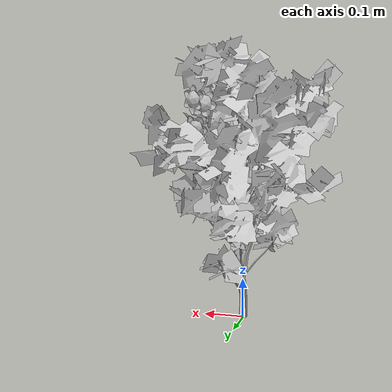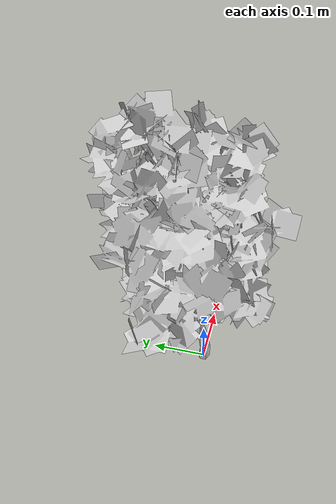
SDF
<?xml version="1.0" ?>
<sdf version="1.6">
  <model name="tree-flowers">
    <!--Skew-Seed:1919820307-->
    <static>true</static>
    <link name="link"/>
    <include>
      <uri>model://tree-mesh</uri>
      <pose>0 0 0 0 0 0</pose>
    </include>
    <joint name="tree_joint" type="fixed">
      <child>tree-mesh::link</child>
      <parent>link</parent>
    </joint>
    <include>
      <name>bramble_0</name>
      <uri>model://bramble</uri>
      <pose> 0.09141163342799694 0.09633158749663887 0.4012208919425634 -0.5691393345106853 1.9225342181580676 0.0</pose>
    </include>
    <joint name="flower_joint_0" type="fixed">
      <child>bramble_0::flower_link</child>
      <parent>link</parent>
    </joint>
    <include>
      <name>bramble_1</name>
      <uri>model://bramble</uri>
      <pose> -0.09704201590292162 0.09363893691673696 0.37490927381271455 -3.052652351292128 0.8508210236286365 0.0</pose>
    </include>
    <joint name="flower_joint_1" type="fixed">
      <child>bramble_1::flower_link</child>
      <parent>link</parent>
    </joint>
    <include>
      <name>bramble_2</name>
      <uri>model://bramble</uri>
      <pose> 0.06508841909901045 0.07868459253553944 0.5128377735165648 -0.4256100876832254 2.0125143327902872 0.0</pose>
    </include>
    <joint name="flower_joint_2" type="fixed">
      <child>bramble_2::flower_link</child>
      <parent>link</parent>
    </joint>
    <include>
      <name>bramble_3</name>
      <uri>model://bramble</uri>
      <pose> 0.10214592072795362 0.05802008697484675 0.5045665272400972 -0.3955162535529281 2.297047099963645 0.0</pose>
    </include>
    <joint name="flower_joint_3" type="fixed">
      <child>bramble_3::flower_link</child>
      <parent>link</parent>
    </joint>
    <include>
      <name>bramble_4</name>
      <uri>model://bramble</uri>
      <pose> 0.08181976897045037 0.127134795257467 0.5631781104094925 -1.0471214156184707 1.4541014988050547 0.0</pose>
    </include>
    <joint name="flower_joint_4" type="fixed">
      <child>bramble_4::flower_link</child>
      <parent>link</parent>
    </joint>
    <include>
      <name>bramble_5</name>
      <uri>model://bramble</uri>
      <pose> 0.07605463344661276 0.12619817467102698 0.49809056200652546 -1.129076965708725 2.0504929128421088 0.0</pose>
    </include>
    <joint name="flower_joint_5" type="fixed">
      <child>bramble_5::flower_link</child>
      <parent>link</parent>
    </joint>
    <include>
      <name>bramble_6</name>
      <uri>model://bramble</uri>
      <pose> 0.06082581944590551 0.1183936683525335 0.5525688325118483 -1.2184092801081008 0.8307684570885713 0.0</pose>
    </include>
    <joint name="flower_joint_6" type="fixed">
      <child>bramble_6::flower_link</child>
      <parent>link</parent>
    </joint>
    <include>
      <name>bramble_7</name>
      <uri>model://bramble</uri>
      <pose> 0.08391144117639651 0.060804736313858444 0.3991896327108064 -0.7997381219607433 1.8653865210781067 0.0</pose>
    </include>
    <joint name="flower_joint_7" type="fixed">
      <child>bramble_7::flower_link</child>
      <parent>link</parent>
    </joint>
  </model>
</sdf>

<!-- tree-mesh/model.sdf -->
<sdf version="1.6">
  <model name="tree-mesh">
    <static>true</static>
    <link name="link">

      <collision name="collision">
        <geometry>
          <mesh>
            <uri>model://tree-mesh/meshes/new_tree.dae</uri>
            <scale>0.0625 0.0625 0.0625</scale>
          </mesh>
        </geometry>
      </collision>

      <!-- simplified collision for sake of speed since leaves shouldn't be blocking anyway -->

      <visual name="leaves">
        <geometry>
          <mesh>
            <uri>model://tree-mesh/meshes/leaves.dae</uri>
            <scale>0.0325 0.0325 0.0325</scale>
          </mesh>
        </geometry>
        <material>
          <script>
            <uri>model://tree-mesh/materials/scripts/</uri>
            <uri>model://tree-mesh/materials/textures/</uri>
            <name>NewTree/Branch</name>
          </script>
        </material>
      </visual>
      <visual name="bark">
        <geometry>
          <mesh>
            <uri>model://tree-mesh/meshes/bark.dae</uri>
            <scale>0.0325 0.0325 0.0325</scale>
          </mesh>
        </geometry>
        <material>
          <script>
            <uri>model://tree-mesh/materials/scripts/</uri>
            <uri>model://tree-mesh/materials/textures/</uri>
            <name>NewTree/Bark</name>
          </script>
        </material>
      </visual>
    </link>
  </model>
</sdf>

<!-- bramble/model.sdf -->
<sdf version="1.6">
  <model name="bramble-flower">
    <static>true</static>
    <link name="flower_link">
      <collision name="body_collision">
        <geometry>
          <mesh>
            <uri>model://bramble/meshes/bramble.dae</uri>
            <scale>0.4 0.4 0.4</scale>
          </mesh>
        </geometry>
      </collision>
      <visual name="petals">
        <geometry>
          <mesh>
            <uri>model://bramble/meshes/bramble.dae</uri>
            <scale>0.4 0.4 0.4</scale>
            <submesh>
              <name>petal</name>
            </submesh>
          </mesh>
        </geometry>
        <material>
          <script>
            <uri>model://bramble/materials/scripts/</uri>
            <uri>model://bramble/materials/textures/</uri>
            <name>Bramble/Petal</name>
          </script>
        </material>
      </visual>
      <visual name="carpel">
        <geometry>
          <mesh>
            <uri>model://bramble/meshes/bramble.dae</uri>
            <scale>0.4 0.4 0.4</scale>
            <submesh>
              <name>carpel</name>
            </submesh>
          </mesh>
        </geometry>
        <material>
          <script>
            <uri>model://bramble/materials/scripts/</uri>
            <uri>model://bramble/materials/textures/</uri>
            <name>Bramble/Carpel</name>
          </script>
        </material>
      </visual>
      <visual name="stamen">
        <geometry>
          <mesh>
            <uri>model://bramble/meshes/bramble.dae</uri>
            <scale>0.4 0.4 0.4</scale>
            <submesh>
              <name>stamen</name>
            </submesh>
          </mesh>
        </geometry>
        <material>
          <script>
            <uri>model://bramble/materials/scripts/</uri>
            <uri>model://bramble/materials/textures/</uri>
            <name>Bramble/Stamen</name>
          </script>
        </material>
      </visual>
    </link>
  </model>
</sdf>
